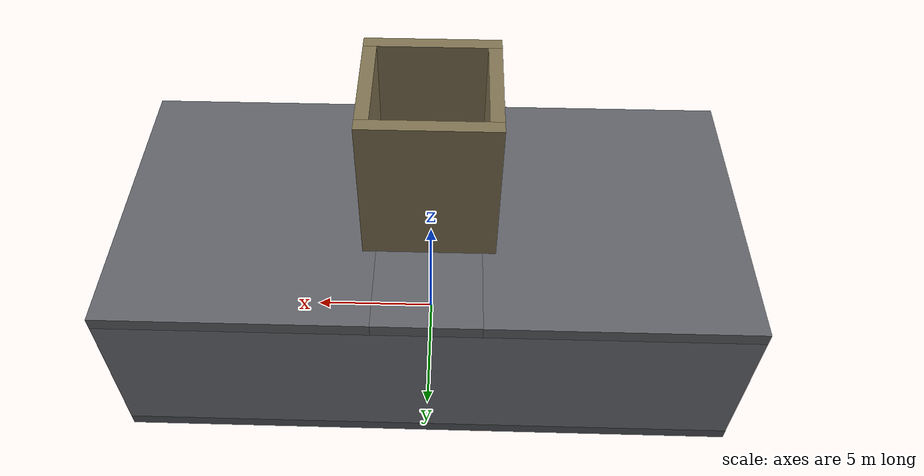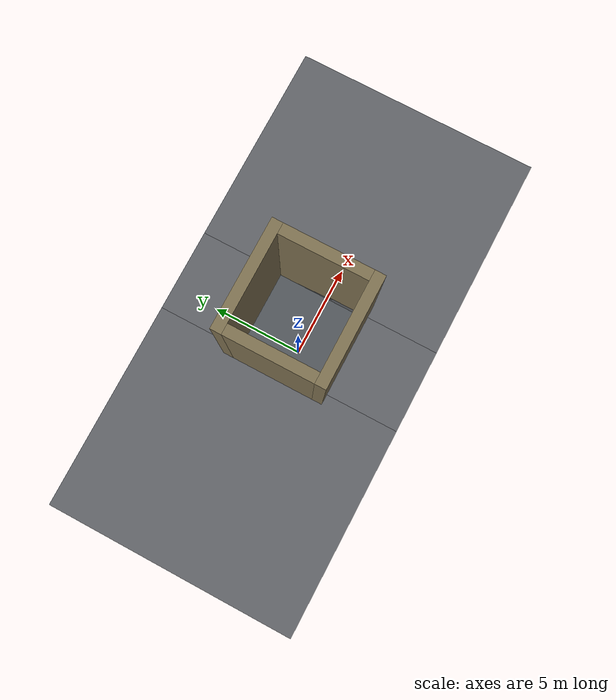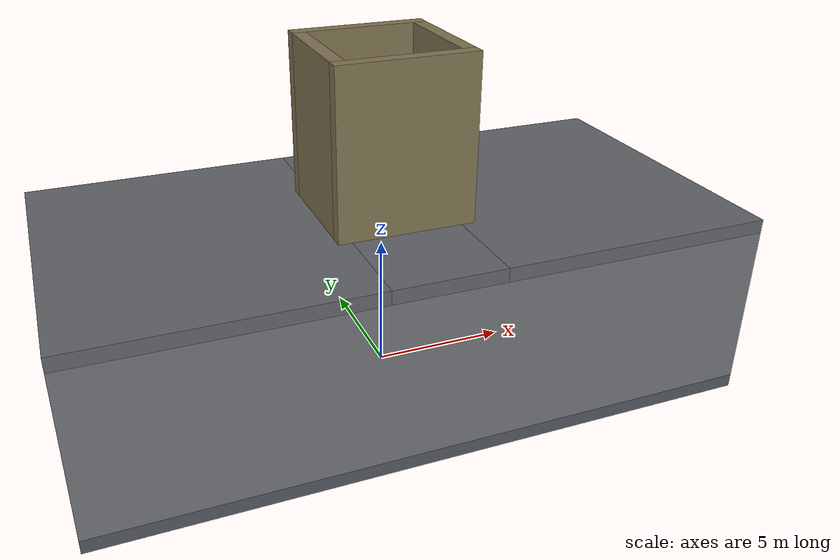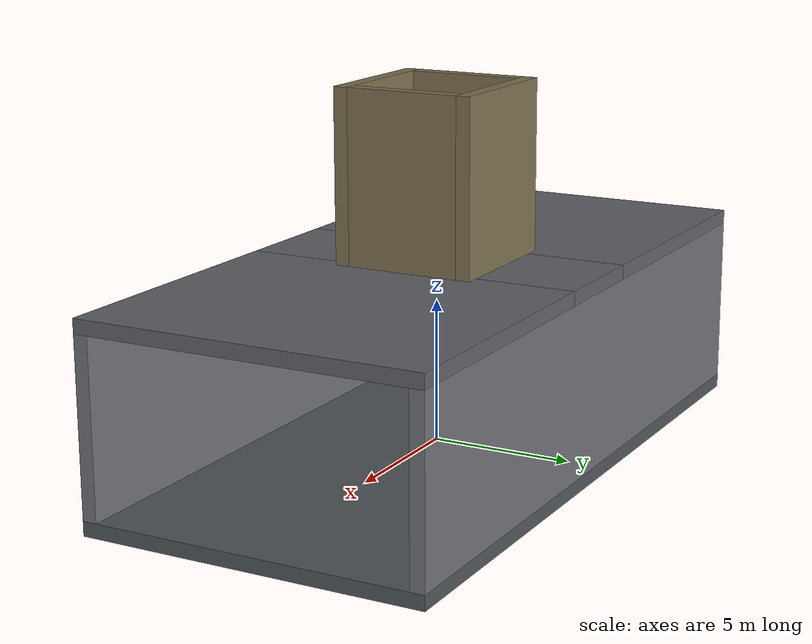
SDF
<?xml version="1.0" ?>
<sdf version="1.10">
  <world name="compact_3d_passage">
    <gravity>0 0 -9.81</gravity>
    <physics name="default_physics" type="ignored">
      <max_step_size>0.004</max_step_size>
      <real_time_factor>1.0</real_time_factor>
    </physics>

    <model name="passage_shell">
      <static>true</static>
      <link name="floor">
        <pose>0 0 -0.25 0 0 0</pose>
        <collision name="collision">
          <geometry><box><size>24 12 0.5</size></box></geometry>
        </collision>
        <visual name="visual">
          <geometry><box><size>24 12 0.5</size></box></geometry>
          <material><diffuse>0.32 0.34 0.36 1</diffuse></material>
        </visual>
      </link>

      <link name="north_wall">
        <pose>0 5.75 3 0 0 0</pose>
        <collision name="collision">
          <geometry><box><size>24 0.5 6</size></box></geometry>
        </collision>
        <visual name="visual">
          <geometry><box><size>24 0.5 6</size></box></geometry>
          <material><diffuse>0.44 0.45 0.47 1</diffuse></material>
        </visual>
      </link>

      <link name="south_wall">
        <pose>0 -5.75 3 0 0 0</pose>
        <collision name="collision">
          <geometry><box><size>24 0.5 6</size></box></geometry>
        </collision>
        <visual name="visual">
          <geometry><box><size>24 0.5 6</size></box></geometry>
          <material><diffuse>0.44 0.45 0.47 1</diffuse></material>
        </visual>
      </link>

      <link name="west_roof">
        <pose>-7 0 6.25 0 0 0</pose>
        <collision name="collision">
          <geometry><box><size>10 12 0.5</size></box></geometry>
        </collision>
        <visual name="visual">
          <geometry><box><size>10 12 0.5</size></box></geometry>
          <material><diffuse>0.38 0.39 0.41 1</diffuse></material>
        </visual>
      </link>

      <link name="east_roof">
        <pose>7 0 6.25 0 0 0</pose>
        <collision name="collision">
          <geometry><box><size>10 12 0.5</size></box></geometry>
        </collision>
        <visual name="visual">
          <geometry><box><size>10 12 0.5</size></box></geometry>
          <material><diffuse>0.38 0.39 0.41 1</diffuse></material>
        </visual>
      </link>

      <link name="north_center_roof">
        <pose>0 4 6.25 0 0 0</pose>
        <collision name="collision">
          <geometry><box><size>4 4 0.5</size></box></geometry>
        </collision>
        <visual name="visual">
          <geometry><box><size>4 4 0.5</size></box></geometry>
          <material><diffuse>0.38 0.39 0.41 1</diffuse></material>
        </visual>
      </link>

      <link name="south_center_roof">
        <pose>0 -4 6.25 0 0 0</pose>
        <collision name="collision">
          <geometry><box><size>4 4 0.5</size></box></geometry>
        </collision>
        <visual name="visual">
          <geometry><box><size>4 4 0.5</size></box></geometry>
          <material><diffuse>0.38 0.39 0.41 1</diffuse></material>
        </visual>
      </link>

      <link name="shaft_west_wall">
        <pose>-2.25 0 9.25 0 0 0</pose>
        <collision name="collision">
          <geometry><box><size>0.5 4 6.5</size></box></geometry>
        </collision>
        <visual name="visual">
          <geometry><box><size>0.5 4 6.5</size></box></geometry>
          <material><diffuse>0.50 0.45 0.32 1</diffuse></material>
        </visual>
      </link>

      <link name="shaft_east_wall">
        <pose>2.25 0 9.25 0 0 0</pose>
        <collision name="collision">
          <geometry><box><size>0.5 4 6.5</size></box></geometry>
        </collision>
        <visual name="visual">
          <geometry><box><size>0.5 4 6.5</size></box></geometry>
          <material><diffuse>0.50 0.45 0.32 1</diffuse></material>
        </visual>
      </link>

      <link name="shaft_north_wall">
        <pose>0 2.25 9.25 0 0 0</pose>
        <collision name="collision">
          <geometry><box><size>5 0.5 6.5</size></box></geometry>
        </collision>
        <visual name="visual">
          <geometry><box><size>5 0.5 6.5</size></box></geometry>
          <material><diffuse>0.50 0.45 0.32 1</diffuse></material>
        </visual>
      </link>

      <link name="shaft_south_wall">
        <pose>0 -2.25 9.25 0 0 0</pose>
        <collision name="collision">
          <geometry><box><size>5 0.5 6.5</size></box></geometry>
        </collision>
        <visual name="visual">
          <geometry><box><size>5 0.5 6.5</size></box></geometry>
          <material><diffuse>0.50 0.45 0.32 1</diffuse></material>
        </visual>
      </link>

      <link name="angled_baffle">
        <pose>-6 0 1.75 0 0 0.35</pose>
        <collision name="collision">
          <geometry><box><size>0.5 4 3.5</size></box></geometry>
        </collision>
        <visual name="visual">
          <geometry><box><size>0.5 4 3.5</size></box></geometry>
          <material><diffuse>0.55 0.28 0.22 1</diffuse></material>
        </visual>
      </link>
    </model>

    <light name="sun" type="directional">
      <cast_shadows>true</cast_shadows>
      <pose>0 0 20 0 0 0</pose>
      <diffuse>0.8 0.8 0.8 1</diffuse>
      <specular>0.2 0.2 0.2 1</specular>
      <direction>-0.5 0.2 -0.8</direction>
    </light>
  </world>
</sdf>
